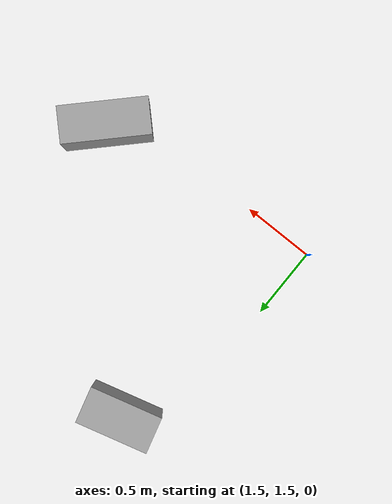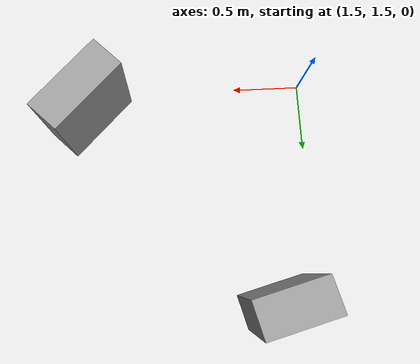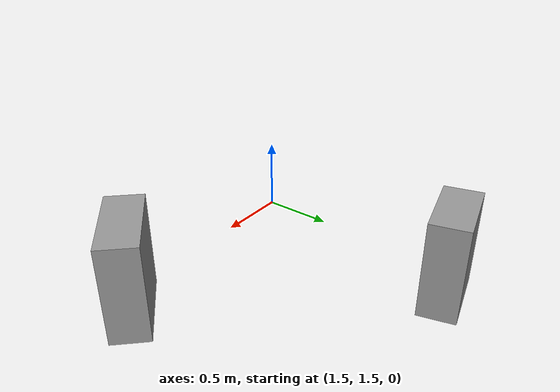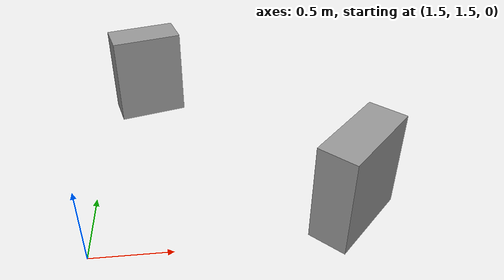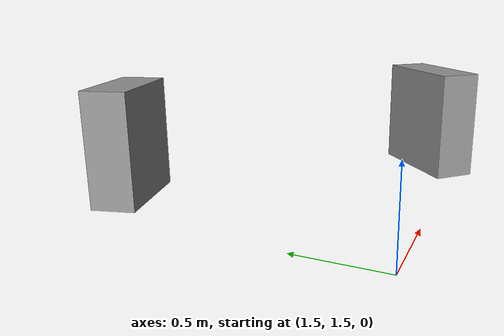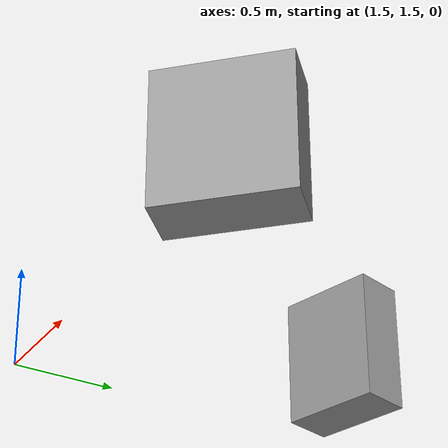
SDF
<?xml version='1.0'?>
<sdf version='1.7'>
  <model name='teamA_appendages'>
    <pose>1.70055 1.65526 0 0 -0 0</pose>
    <link name='Wall_6'>
      <collision name='Wall_6_Collision'>
        <geometry>
          <box>
            <size>0.5 0.25 0.65</size>
          </box>
        </geometry>
        <pose>0 0 0.325 0 -0 0</pose>
      </collision>
      <visual name='Wall_6_Visual'>
        <pose>0 0 0.325 0 -0 0</pose>
        <geometry>
          <box>
            <size>0.5 0.25 0.65</size>
          </box>
        </geometry>
        <material>
          <script>
            <uri>file://media/materials/scripts/gazebo.material</uri>
            <name>Gazebo/Grey</name>
          </script>
          <ambient>1 1 1 1</ambient>
        </material>
        <meta>
          <layer>0</layer>
        </meta>
      </visual>
      <pose>0.110388 1.46982 0 0 -0 -2.87979</pose>
    </link>
    <link name='Wall_8'>
      <collision name='Wall_8_Collision'>
        <geometry>
          <box>
            <size>0.600019 0.25 0.65</size>
          </box>
        </geometry>
        <pose>0 0 0.325 0 -0 0</pose>
      </collision>
      <visual name='Wall_8_Visual'>
        <pose>0 0 0.325 0 -0 0</pose>
        <geometry>
          <box>
            <size>0.600019 0.25 0.65</size>
          </box>
        </geometry>
        <material>
          <script>
            <uri>file://media/materials/scripts/gazebo.material</uri>
            <name>Gazebo/Grey</name>
          </script>
          <ambient>1 1 1 1</ambient>
        </material>
        <meta>
          <layer>0</layer>
        </meta>
      </visual>
      <pose>1.40028 0.02143 0 0 -0 -2.35417</pose>
    </link>
    <static>1</static>
  </model>
</sdf>
